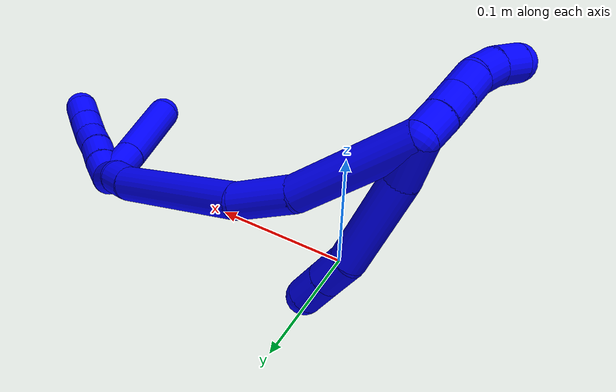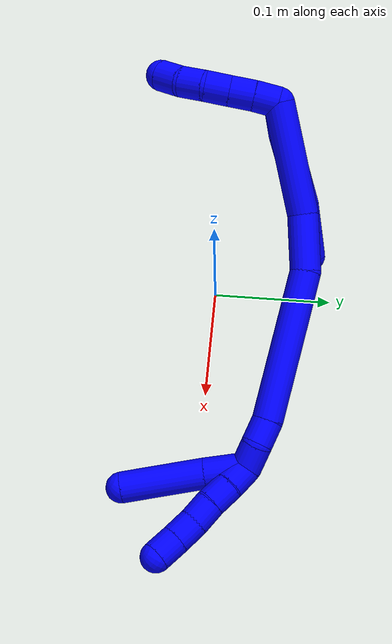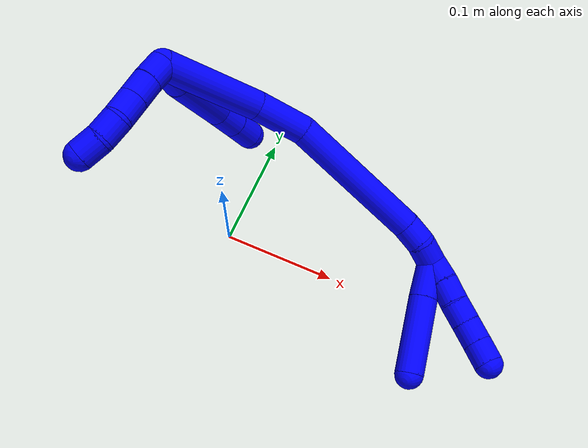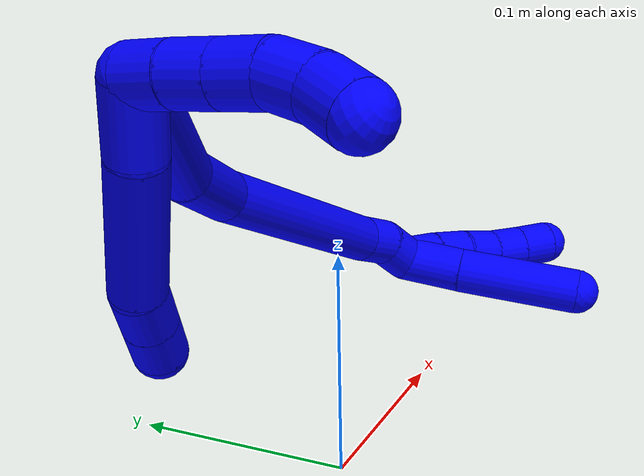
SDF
<sdf version="1.7">
 <world name="default">
  <model name="1">
   <static>0</static>
   <link name="1">
    <collision name="collision-cylinder-e_1_2_8">
     <pose>-0.011286 -0.001696 0.011521 0.146124 -0.769756 -0.05928</pose>
     <geometry><cylinder><radius>0.0125</radius><length>0.032433</length></cylinder></geometry>
     <surface>
      <friction><ode><mu>1.16</mu><mu2>1.16</mu2><slip1>0</slip1><slip2>0</slip2></ode></friction>
      <contact><ode><kp>1e+06</kp><kd>1</kd><max_vel>0</max_vel><min_depth>0.001</min_depth></ode></contact>
     </surface>
    </collision>
    <visual name="visual-cylinder-e_1_2_8">
     <pose>-0.011286 -0.001696 0.011521 0.146124 -0.769756 -0.05928</pose>
     <geometry><cylinder><radius>0.0125</radius><length>0.032433</length></cylinder></geometry>
     <material><ambient>0 0 1 1</ambient></material>
    </visual>
    <collision name="collision-cylinder-e_2_8_9">
     <pose>-0.04402 -0.002714 0.050615 -0.024564 -0.660946 0.008427</pose>
     <geometry><cylinder><radius>0.0125</radius><length>0.069878</length></cylinder></geometry>
     <surface>
      <friction><ode><mu>1.16</mu><mu2>1.16</mu2><slip1>0</slip1><slip2>0</slip2></ode></friction>
      <contact><ode><kp>1e+06</kp><kd>1</kd><max_vel>0</max_vel><min_depth>0.001</min_depth></ode></contact>
     </surface>
    </collision>
    <visual name="visual-cylinder-e_2_8_9">
     <pose>-0.04402 -0.002714 0.050615 -0.024564 -0.660946 0.008427</pose>
     <geometry><cylinder><radius>0.0125</radius><length>0.069878</length></cylinder></geometry>
     <material><ambient>0 0 1 1</ambient></material>
    </visual>
    <collision name="collision-cylinder-e_3_9_10">
     <pose>-0.073548 0.000962 0.08669 -0.33897 -0.730722 0.130737</pose>
     <geometry><cylinder><radius>0.0125</radius><length>0.024213</length></cylinder></geometry>
     <surface>
      <friction><ode><mu>1.16</mu><mu2>1.16</mu2><slip1>0</slip1><slip2>0</slip2></ode></friction>
      <contact><ode><kp>1e+06</kp><kd>1</kd><max_vel>0</max_vel><min_depth>0.001</min_depth></ode></contact>
     </surface>
    </collision>
    <visual name="visual-cylinder-e_3_9_10">
     <pose>-0.073548 0.000962 0.08669 -0.33897 -0.730722 0.130737</pose>
     <geometry><cylinder><radius>0.0125</radius><length>0.024213</length></cylinder></geometry>
     <material><ambient>0 0 1 1</ambient></material>
    </visual>
    <collision name="collision-cylinder-e_4_10_6">
     <pose>-0.08953 0.006777 0.103402 -0.330615 -0.738523 0.128952</pose>
     <geometry><cylinder><radius>0.0125</radius><length>0.023476</length></cylinder></geometry>
     <surface>
      <friction><ode><mu>1.16</mu><mu2>1.16</mu2><slip1>0</slip1><slip2>0</slip2></ode></friction>
      <contact><ode><kp>1e+06</kp><kd>1</kd><max_vel>0</max_vel><min_depth>0.001</min_depth></ode></contact>
     </surface>
    </collision>
    <visual name="visual-cylinder-e_4_10_6">
     <pose>-0.08953 0.006777 0.103402 -0.330615 -0.738523 0.128952</pose>
     <geometry><cylinder><radius>0.0125</radius><length>0.023476</length></cylinder></geometry>
     <material><ambient>0 0 1 1</ambient></material>
    </visual>
    <collision name="collision-cylinder-e_1_2_11">
     <pose>-0.004343 -0.001333 -0.008908 2.99311 -0.449313 -2.51226</pose>
     <geometry><cylinder><radius>0.0125</radius><length>0.02</length></cylinder></geometry>
     <surface>
      <friction><ode><mu>1.16</mu><mu2>1.16</mu2><slip1>0</slip1><slip2>0</slip2></ode></friction>
      <contact><ode><kp>1e+06</kp><kd>1</kd><max_vel>0</max_vel><min_depth>0.001</min_depth></ode></contact>
     </surface>
    </collision>
    <visual name="visual-cylinder-e_1_2_11">
     <pose>-0.004343 -0.001333 -0.008908 2.99311 -0.449313 -2.51226</pose>
     <geometry><cylinder><radius>0.0125</radius><length>0.02</length></cylinder></geometry>
     <material><ambient>0 0 1 1</ambient></material>
    </visual>
    <collision name="collision-cylinder-e_2_11_12">
     <pose>-0.013509 -0.003585 -0.026529 3.03643 -0.50318 -2.73768</pose>
     <geometry><cylinder><radius>0.0125</radius><length>0.02</length></cylinder></geometry>
     <surface>
      <friction><ode><mu>1.16</mu><mu2>1.16</mu2><slip1>0</slip1><slip2>0</slip2></ode></friction>
      <contact><ode><kp>1e+06</kp><kd>1</kd><max_vel>0</max_vel><min_depth>0.001</min_depth></ode></contact>
     </surface>
    </collision>
    <visual name="visual-cylinder-e_2_11_12">
     <pose>-0.013509 -0.003585 -0.026529 3.03643 -0.50318 -2.73768</pose>
     <geometry><cylinder><radius>0.0125</radius><length>0.02</length></cylinder></geometry>
     <material><ambient>0 0 1 1</ambient></material>
    </visual>
    <collision name="collision-cylinder-e_3_12_13">
     <pose>-0.023057 -0.005393 -0.044009 3.04055 -0.492197 -2.74432</pose>
     <geometry><cylinder><radius>0.0125</radius><length>0.02</length></cylinder></geometry>
     <surface>
      <friction><ode><mu>1.16</mu><mu2>1.16</mu2><slip1>0</slip1><slip2>0</slip2></ode></friction>
      <contact><ode><kp>1e+06</kp><kd>1</kd><max_vel>0</max_vel><min_depth>0.001</min_depth></ode></contact>
     </surface>
    </collision>
    <visual name="visual-cylinder-e_3_12_13">
     <pose>-0.023057 -0.005393 -0.044009 3.04055 -0.492197 -2.74432</pose>
     <geometry><cylinder><radius>0.0125</radius><length>0.02</length></cylinder></geometry>
     <material><ambient>0 0 1 1</ambient></material>
    </visual>
    <collision name="collision-cylinder-e_4_13_14">
     <pose>-0.033681 -0.009386 -0.060232 2.74701 -0.630823 -2.04235</pose>
     <geometry><cylinder><radius>0.0125</radius><length>0.02</length></cylinder></geometry>
     <surface>
      <friction><ode><mu>1.16</mu><mu2>1.16</mu2><slip1>0</slip1><slip2>0</slip2></ode></friction>
      <contact><ode><kp>1e+06</kp><kd>1</kd><max_vel>0</max_vel><min_depth>0.001</min_depth></ode></contact>
     </surface>
    </collision>
    <visual name="visual-cylinder-e_4_13_14">
     <pose>-0.033681 -0.009386 -0.060232 2.74701 -0.630823 -2.04235</pose>
     <geometry><cylinder><radius>0.0125</radius><length>0.02</length></cylinder></geometry>
     <material><ambient>0 0 1 1</ambient></material>
    </visual>
    <collision name="collision-cylinder-e_5_14_5">
     <pose>-0.045174 -0.017902 -0.073965 2.43027 -0.593784 -1.37794</pose>
     <geometry><cylinder><radius>0.0125</radius><length>0.02</length></cylinder></geometry>
     <surface>
      <friction><ode><mu>1.16</mu><mu2>1.16</mu2><slip1>0</slip1><slip2>0</slip2></ode></friction>
      <contact><ode><kp>1e+06</kp><kd>1</kd><max_vel>0</max_vel><min_depth>0.001</min_depth></ode></contact>
     </surface>
    </collision>
    <visual name="visual-cylinder-e_5_14_5">
     <pose>-0.045174 -0.017902 -0.073965 2.43027 -0.593784 -1.37794</pose>
     <geometry><cylinder><radius>0.0125</radius><length>0.02</length></cylinder></geometry>
     <material><ambient>0 0 1 1</ambient></material>
    </visual>
    <collision name="collision-cylinder-e_1_2_15">
     <pose>-0.02317 0.023311 0.031085 -0.643439 -0.537709 0.183151</pose>
     <geometry><cylinder><radius>0.0125</radius><length>0.090476</length></cylinder></geometry>
     <surface>
      <friction><ode><mu>1.16</mu><mu2>1.16</mu2><slip1>0</slip1><slip2>0</slip2></ode></friction>
      <contact><ode><kp>1e+06</kp><kd>1</kd><max_vel>0</max_vel><min_depth>0.001</min_depth></ode></contact>
     </surface>
    </collision>
    <visual name="visual-cylinder-e_1_2_15">
     <pose>-0.02317 0.023311 0.031085 -0.643439 -0.537709 0.183151</pose>
     <geometry><cylinder><radius>0.0125</radius><length>0.090476</length></cylinder></geometry>
     <material><ambient>0 0 1 1</ambient></material>
    </visual>
    <collision name="collision-cylinder-e_2_15_16">
     <pose>-0.058483 0.062365 0.073434 -0.949756 -0.56028 0.2937</pose>
     <geometry><cylinder><radius>0.0125</radius><length>0.045704</length></cylinder></geometry>
     <surface>
      <friction><ode><mu>1.16</mu><mu2>1.16</mu2><slip1>0</slip1><slip2>0</slip2></ode></friction>
      <contact><ode><kp>1e+06</kp><kd>1</kd><max_vel>0</max_vel><min_depth>0.001</min_depth></ode></contact>
     </surface>
    </collision>
    <visual name="visual-cylinder-e_2_15_16">
     <pose>-0.058483 0.062365 0.073434 -0.949756 -0.56028 0.2937</pose>
     <geometry><cylinder><radius>0.0125</radius><length>0.045704</length></cylinder></geometry>
     <material><ambient>0 0 1 1</ambient></material>
    </visual>
    <collision name="collision-cylinder-e_3_16_17">
     <pose>-0.111989 0.120451 0.099304 -1.23864 -0.745608 0.543796</pose>
     <geometry><cylinder><radius>0.0125</radius><length>0.121935</length></cylinder></geometry>
     <surface>
      <friction><ode><mu>1.16</mu><mu2>1.16</mu2><slip1>0</slip1><slip2>0</slip2></ode></friction>
      <contact><ode><kp>1e+06</kp><kd>1</kd><max_vel>0</max_vel><min_depth>0.001</min_depth></ode></contact>
     </surface>
    </collision>
    <visual name="visual-cylinder-e_3_16_17">
     <pose>-0.111989 0.120451 0.099304 -1.23864 -0.745608 0.543796</pose>
     <geometry><cylinder><radius>0.0125</radius><length>0.121935</length></cylinder></geometry>
     <material><ambient>0 0 1 1</ambient></material>
    </visual>
    <collision name="collision-cylinder-e_4_17_18">
     <pose>-0.160521 0.169857 0.114437 -1.49625 -0.791593 0.739894</pose>
     <geometry><cylinder><radius>0.0125</radius><length>0.020158</length></cylinder></geometry>
     <surface>
      <friction><ode><mu>1.16</mu><mu2>1.16</mu2><slip1>0</slip1><slip2>0</slip2></ode></friction>
      <contact><ode><kp>1e+06</kp><kd>1</kd><max_vel>0</max_vel><min_depth>0.001</min_depth></ode></contact>
     </surface>
    </collision>
    <visual name="visual-cylinder-e_4_17_18">
     <pose>-0.160521 0.169857 0.114437 -1.49625 -0.791593 0.739894</pose>
     <geometry><cylinder><radius>0.0125</radius><length>0.020158</length></cylinder></geometry>
     <material><ambient>0 0 1 1</ambient></material>
    </visual>
    <collision name="collision-cylinder-e_5_18_1">
     <pose>-0.177236 0.181692 0.117002 -1.16726 -1.07285 0.748289</pose>
     <geometry><cylinder><radius>0.0125</radius><length>0.021726</length></cylinder></geometry>
     <surface>
      <friction><ode><mu>1.16</mu><mu2>1.16</mu2><slip1>0</slip1><slip2>0</slip2></ode></friction>
      <contact><ode><kp>1e+06</kp><kd>1</kd><max_vel>0</max_vel><min_depth>0.001</min_depth></ode></contact>
     </surface>
    </collision>
    <visual name="visual-cylinder-e_5_18_1">
     <pose>-0.177236 0.181692 0.117002 -1.16726 -1.07285 0.748289</pose>
     <geometry><cylinder><radius>0.0125</radius><length>0.021726</length></cylinder></geometry>
     <material><ambient>0 0 1 1</ambient></material>
    </visual>
    <collision name="collision-cylinder-e_1_1_19">
     <pose>-0.192736 0.193742 0.115639 -2.00788 -0.63791 0.957125</pose>
     <geometry><cylinder><radius>0.0125</radius><length>0.02</length></cylinder></geometry>
     <surface>
      <friction><ode><mu>1.16</mu><mu2>1.16</mu2><slip1>0</slip1><slip2>0</slip2></ode></friction>
      <contact><ode><kp>1e+06</kp><kd>1</kd><max_vel>0</max_vel><min_depth>0.001</min_depth></ode></contact>
     </surface>
    </collision>
    <visual name="visual-cylinder-e_1_1_19">
     <pose>-0.192736 0.193742 0.115639 -2.00788 -0.63791 0.957125</pose>
     <geometry><cylinder><radius>0.0125</radius><length>0.02</length></cylinder></geometry>
     <material><ambient>0 0 1 1</ambient></material>
    </visual>
    <collision name="collision-cylinder-e_2_19_20">
     <pose>-0.205264 0.207603 0.108568 -2.07946 -0.717191 1.13596</pose>
     <geometry><cylinder><radius>0.0125</radius><length>0.02</length></cylinder></geometry>
     <surface>
      <friction><ode><mu>1.16</mu><mu2>1.16</mu2><slip1>0</slip1><slip2>0</slip2></ode></friction>
      <contact><ode><kp>1e+06</kp><kd>1</kd><max_vel>0</max_vel><min_depth>0.001</min_depth></ode></contact>
     </surface>
    </collision>
    <visual name="visual-cylinder-e_2_19_20">
     <pose>-0.205264 0.207603 0.108568 -2.07946 -0.717191 1.13596</pose>
     <geometry><cylinder><radius>0.0125</radius><length>0.02</length></cylinder></geometry>
     <material><ambient>0 0 1 1</ambient></material>
    </visual>
    <collision name="collision-cylinder-e_3_20_21">
     <pose>-0.218823 0.220869 0.102345 -1.93565 -0.77351 1.06833</pose>
     <geometry><cylinder><radius>0.0125</radius><length>0.02</length></cylinder></geometry>
     <surface>
      <friction><ode><mu>1.16</mu><mu2>1.16</mu2><slip1>0</slip1><slip2>0</slip2></ode></friction>
      <contact><ode><kp>1e+06</kp><kd>1</kd><max_vel>0</max_vel><min_depth>0.001</min_depth></ode></contact>
     </surface>
    </collision>
    <visual name="visual-cylinder-e_3_20_21">
     <pose>-0.218823 0.220869 0.102345 -1.93565 -0.77351 1.06833</pose>
     <geometry><cylinder><radius>0.0125</radius><length>0.02</length></cylinder></geometry>
     <material><ambient>0 0 1 1</ambient></material>
    </visual>
    <collision name="collision-cylinder-e_4_21_22">
     <pose>-0.231905 0.234493 0.095962 -2.07501 -0.655551 1.04517</pose>
     <geometry><cylinder><radius>0.0125</radius><length>0.02</length></cylinder></geometry>
     <surface>
      <friction><ode><mu>1.16</mu><mu2>1.16</mu2><slip1>0</slip1><slip2>0</slip2></ode></friction>
      <contact><ode><kp>1e+06</kp><kd>1</kd><max_vel>0</max_vel><min_depth>0.001</min_depth></ode></contact>
     </surface>
    </collision>
    <visual name="visual-cylinder-e_4_21_22">
     <pose>-0.231905 0.234493 0.095962 -2.07501 -0.655551 1.04517</pose>
     <geometry><cylinder><radius>0.0125</radius><length>0.02</length></cylinder></geometry>
     <material><ambient>0 0 1 1</ambient></material>
    </visual>
    <collision name="collision-cylinder-e_5_22_4">
     <pose>-0.24386 0.248375 0.08795 -2.11304 -0.626 1.0404</pose>
     <geometry><cylinder><radius>0.0125</radius><length>0.02</length></cylinder></geometry>
     <surface>
      <friction><ode><mu>1.16</mu><mu2>1.16</mu2><slip1>0</slip1><slip2>0</slip2></ode></friction>
      <contact><ode><kp>1e+06</kp><kd>1</kd><max_vel>0</max_vel><min_depth>0.001</min_depth></ode></contact>
     </surface>
    </collision>
    <visual name="visual-cylinder-e_5_22_4">
     <pose>-0.24386 0.248375 0.08795 -2.11304 -0.626 1.0404</pose>
     <geometry><cylinder><radius>0.0125</radius><length>0.02</length></cylinder></geometry>
     <material><ambient>0 0 1 1</ambient></material>
    </visual>
    <collision name="collision-cylinder-e_1_1_23">
     <pose>-0.198606 0.187703 0.107738 -3.03239 -0.805049 2.88624</pose>
     <geometry><cylinder><radius>0.0125</radius><length>0.032808</length></cylinder></geometry>
     <surface>
      <friction><ode><mu>1.16</mu><mu2>1.16</mu2><slip1>0</slip1><slip2>0</slip2></ode></friction>
      <contact><ode><kp>1e+06</kp><kd>1</kd><max_vel>0</max_vel><min_depth>0.001</min_depth></ode></contact>
     </surface>
    </collision>
    <visual name="visual-cylinder-e_1_1_23">
     <pose>-0.198606 0.187703 0.107738 -3.03239 -0.805049 2.88624</pose>
     <geometry><cylinder><radius>0.0125</radius><length>0.032808</length></cylinder></geometry>
     <material><ambient>0 0 1 1</ambient></material>
    </visual>
    <collision name="collision-cylinder-e_2_23_3">
     <pose>-0.234494 0.193089 0.073361 -2.96377 -0.798412 2.72507</pose>
     <geometry><cylinder><radius>0.0125</radius><length>0.067192</length></cylinder></geometry>
     <surface>
      <friction><ode><mu>1.16</mu><mu2>1.16</mu2><slip1>0</slip1><slip2>0</slip2></ode></friction>
      <contact><ode><kp>1e+06</kp><kd>1</kd><max_vel>0</max_vel><min_depth>0.001</min_depth></ode></contact>
     </surface>
    </collision>
    <visual name="visual-cylinder-e_2_23_3">
     <pose>-0.234494 0.193089 0.073361 -2.96377 -0.798412 2.72507</pose>
     <geometry><cylinder><radius>0.0125</radius><length>0.067192</length></cylinder></geometry>
     <material><ambient>0 0 1 1</ambient></material>
    </visual>
    <collision name="collision-sphere-3">
     <pose>-0.258557 0.197237 0.050286 0 -0 0</pose>
     <geometry><sphere><radius>0.0125</radius></sphere></geometry>
     <surface>
      <friction><ode><mu>1.16</mu><mu2>1.16</mu2><slip1>0</slip1><slip2>0</slip2></ode></friction>
      <contact><ode><kp>1e+06</kp><kd>1</kd><max_vel>0</max_vel><min_depth>0.001</min_depth></ode></contact>
     </surface>
    </collision>
    <visual name="visual-sphere-3">
     <pose>-0.258557 0.197237 0.050286 0 -0 0</pose>
     <geometry><sphere><radius>0.0125</radius></sphere></geometry>
     <material><ambient>0 0 1 1</ambient></material>
    </visual>
    <collision name="collision-sphere-23">
     <pose>-0.210431 0.188942 0.096437 0 -0 0</pose>
     <geometry><sphere><radius>0.0125</radius></sphere></geometry>
     <surface>
      <friction><ode><mu>1.16</mu><mu2>1.16</mu2><slip1>0</slip1><slip2>0</slip2></ode></friction>
      <contact><ode><kp>1e+06</kp><kd>1</kd><max_vel>0</max_vel><min_depth>0.001</min_depth></ode></contact>
     </surface>
    </collision>
    <visual name="visual-sphere-23">
     <pose>-0.210431 0.188942 0.096437 0 -0 0</pose>
     <geometry><sphere><radius>0.0125</radius></sphere></geometry>
     <material><ambient>0 0 1 1</ambient></material>
    </visual>
    <collision name="collision-sphere-4">
     <pose>-0.249719 0.255316 0.083768 0 -0 0</pose>
     <geometry><sphere><radius>0.0125</radius></sphere></geometry>
     <surface>
      <friction><ode><mu>1.16</mu><mu2>1.16</mu2><slip1>0</slip1><slip2>0</slip2></ode></friction>
      <contact><ode><kp>1e+06</kp><kd>1</kd><max_vel>0</max_vel><min_depth>0.001</min_depth></ode></contact>
     </surface>
    </collision>
    <visual name="visual-sphere-4">
     <pose>-0.249719 0.255316 0.083768 0 -0 0</pose>
     <geometry><sphere><radius>0.0125</radius></sphere></geometry>
     <material><ambient>0 0 1 1</ambient></material>
    </visual>
    <collision name="collision-sphere-22">
     <pose>-0.238001 0.241434 0.092132 0 -0 0</pose>
     <geometry><sphere><radius>0.0125</radius></sphere></geometry>
     <surface>
      <friction><ode><mu>1.16</mu><mu2>1.16</mu2><slip1>0</slip1><slip2>0</slip2></ode></friction>
      <contact><ode><kp>1e+06</kp><kd>1</kd><max_vel>0</max_vel><min_depth>0.001</min_depth></ode></contact>
     </surface>
    </collision>
    <visual name="visual-sphere-22">
     <pose>-0.238001 0.241434 0.092132 0 -0 0</pose>
     <geometry><sphere><radius>0.0125</radius></sphere></geometry>
     <material><ambient>0 0 1 1</ambient></material>
    </visual>
    <collision name="collision-sphere-21">
     <pose>-0.225809 0.227553 0.099792 0 -0 0</pose>
     <geometry><sphere><radius>0.0125</radius></sphere></geometry>
     <surface>
      <friction><ode><mu>1.16</mu><mu2>1.16</mu2><slip1>0</slip1><slip2>0</slip2></ode></friction>
      <contact><ode><kp>1e+06</kp><kd>1</kd><max_vel>0</max_vel><min_depth>0.001</min_depth></ode></contact>
     </surface>
    </collision>
    <visual name="visual-sphere-21">
     <pose>-0.225809 0.227553 0.099792 0 -0 0</pose>
     <geometry><sphere><radius>0.0125</radius></sphere></geometry>
     <material><ambient>0 0 1 1</ambient></material>
    </visual>
    <collision name="collision-sphere-20">
     <pose>-0.211836 0.214185 0.104898 0 -0 0</pose>
     <geometry><sphere><radius>0.0125</radius></sphere></geometry>
     <surface>
      <friction><ode><mu>1.16</mu><mu2>1.16</mu2><slip1>0</slip1><slip2>0</slip2></ode></friction>
      <contact><ode><kp>1e+06</kp><kd>1</kd><max_vel>0</max_vel><min_depth>0.001</min_depth></ode></contact>
     </surface>
    </collision>
    <visual name="visual-sphere-20">
     <pose>-0.211836 0.214185 0.104898 0 -0 0</pose>
     <geometry><sphere><radius>0.0125</radius></sphere></geometry>
     <material><ambient>0 0 1 1</ambient></material>
    </visual>
    <collision name="collision-sphere-11">
     <pose>-0.008687 -0.002665 -0.017817 0 -0 0</pose>
     <geometry><sphere><radius>0.0125</radius></sphere></geometry>
     <surface>
      <friction><ode><mu>1.16</mu><mu2>1.16</mu2><slip1>0</slip1><slip2>0</slip2></ode></friction>
      <contact><ode><kp>1e+06</kp><kd>1</kd><max_vel>0</max_vel><min_depth>0.001</min_depth></ode></contact>
     </surface>
    </collision>
    <visual name="visual-sphere-11">
     <pose>-0.008687 -0.002665 -0.017817 0 -0 0</pose>
     <geometry><sphere><radius>0.0125</radius></sphere></geometry>
     <material><ambient>0 0 1 1</ambient></material>
    </visual>
    <collision name="collision-sphere-6">
     <pose>-0.097432 0.009595 0.111612 0 -0 0</pose>
     <geometry><sphere><radius>0.0125</radius></sphere></geometry>
     <surface>
      <friction><ode><mu>1.16</mu><mu2>1.16</mu2><slip1>0</slip1><slip2>0</slip2></ode></friction>
      <contact><ode><kp>1e+06</kp><kd>1</kd><max_vel>0</max_vel><min_depth>0.001</min_depth></ode></contact>
     </surface>
    </collision>
    <visual name="visual-sphere-6">
     <pose>-0.097432 0.009595 0.111612 0 -0 0</pose>
     <geometry><sphere><radius>0.0125</radius></sphere></geometry>
     <material><ambient>0 0 1 1</ambient></material>
    </visual>
    <collision name="collision-sphere-10">
     <pose>-0.081628 0.003959 0.095193 0 -0 0</pose>
     <geometry><sphere><radius>0.0125</radius></sphere></geometry>
     <surface>
      <friction><ode><mu>1.16</mu><mu2>1.16</mu2><slip1>0</slip1><slip2>0</slip2></ode></friction>
      <contact><ode><kp>1e+06</kp><kd>1</kd><max_vel>0</max_vel><min_depth>0.001</min_depth></ode></contact>
     </surface>
    </collision>
    <visual name="visual-sphere-10">
     <pose>-0.081628 0.003959 0.095193 0 -0 0</pose>
     <geometry><sphere><radius>0.0125</radius></sphere></geometry>
     <material><ambient>0 0 1 1</ambient></material>
    </visual>
    <collision name="collision-sphere-9">
     <pose>-0.065468 -0.002036 0.078188 0 -0 0</pose>
     <geometry><sphere><radius>0.0125</radius></sphere></geometry>
     <surface>
      <friction><ode><mu>1.16</mu><mu2>1.16</mu2><slip1>0</slip1><slip2>0</slip2></ode></friction>
      <contact><ode><kp>1e+06</kp><kd>1</kd><max_vel>0</max_vel><min_depth>0.001</min_depth></ode></contact>
     </surface>
    </collision>
    <visual name="visual-sphere-9">
     <pose>-0.065468 -0.002036 0.078188 0 -0 0</pose>
     <geometry><sphere><radius>0.0125</radius></sphere></geometry>
     <material><ambient>0 0 1 1</ambient></material>
    </visual>
    <collision name="collision-sphere-2">
     <geometry><sphere><radius>0.0125</radius></sphere></geometry>
     <surface>
      <friction><ode><mu>1.16</mu><mu2>1.16</mu2><slip1>0</slip1><slip2>0</slip2></ode></friction>
      <contact><ode><kp>1e+06</kp><kd>1</kd><max_vel>0</max_vel><min_depth>0.001</min_depth></ode></contact>
     </surface>
    </collision>
    <visual name="visual-sphere-2">
     <geometry><sphere><radius>0.0125</radius></sphere></geometry>
     <material><ambient>0 0 1 1</ambient></material>
    </visual>
    <collision name="collision-sphere-19">
     <pose>-0.198691 0.20102 0.112238 0 -0 0</pose>
     <geometry><sphere><radius>0.0125</radius></sphere></geometry>
     <surface>
      <friction><ode><mu>1.16</mu><mu2>1.16</mu2><slip1>0</slip1><slip2>0</slip2></ode></friction>
      <contact><ode><kp>1e+06</kp><kd>1</kd><max_vel>0</max_vel><min_depth>0.001</min_depth></ode></contact>
     </surface>
    </collision>
    <visual name="visual-sphere-19">
     <pose>-0.198691 0.20102 0.112238 0 -0 0</pose>
     <geometry><sphere><radius>0.0125</radius></sphere></geometry>
     <material><ambient>0 0 1 1</ambient></material>
    </visual>
    <collision name="collision-sphere-8">
     <pose>-0.022572 -0.003391 0.023042 0 -0 0</pose>
     <geometry><sphere><radius>0.0125</radius></sphere></geometry>
     <surface>
      <friction><ode><mu>1.16</mu><mu2>1.16</mu2><slip1>0</slip1><slip2>0</slip2></ode></friction>
      <contact><ode><kp>1e+06</kp><kd>1</kd><max_vel>0</max_vel><min_depth>0.001</min_depth></ode></contact>
     </surface>
    </collision>
    <visual name="visual-sphere-8">
     <pose>-0.022572 -0.003391 0.023042 0 -0 0</pose>
     <geometry><sphere><radius>0.0125</radius></sphere></geometry>
     <material><ambient>0 0 1 1</ambient></material>
    </visual>
    <collision name="collision-sphere-12">
     <pose>-0.018331 -0.004504 -0.035241 0 -0 0</pose>
     <geometry><sphere><radius>0.0125</radius></sphere></geometry>
     <surface>
      <friction><ode><mu>1.16</mu><mu2>1.16</mu2><slip1>0</slip1><slip2>0</slip2></ode></friction>
      <contact><ode><kp>1e+06</kp><kd>1</kd><max_vel>0</max_vel><min_depth>0.001</min_depth></ode></contact>
     </surface>
    </collision>
    <visual name="visual-sphere-12">
     <pose>-0.018331 -0.004504 -0.035241 0 -0 0</pose>
     <geometry><sphere><radius>0.0125</radius></sphere></geometry>
     <material><ambient>0 0 1 1</ambient></material>
    </visual>
    <collision name="collision-sphere-13">
     <pose>-0.027782 -0.006282 -0.052777 0 -0 0</pose>
     <geometry><sphere><radius>0.0125</radius></sphere></geometry>
     <surface>
      <friction><ode><mu>1.16</mu><mu2>1.16</mu2><slip1>0</slip1><slip2>0</slip2></ode></friction>
      <contact><ode><kp>1e+06</kp><kd>1</kd><max_vel>0</max_vel><min_depth>0.001</min_depth></ode></contact>
     </surface>
    </collision>
    <visual name="visual-sphere-13">
     <pose>-0.027782 -0.006282 -0.052777 0 -0 0</pose>
     <geometry><sphere><radius>0.0125</radius></sphere></geometry>
     <material><ambient>0 0 1 1</ambient></material>
    </visual>
    <collision name="collision-sphere-14">
     <pose>-0.039579 -0.012491 -0.067687 0 -0 0</pose>
     <geometry><sphere><radius>0.0125</radius></sphere></geometry>
     <surface>
      <friction><ode><mu>1.16</mu><mu2>1.16</mu2><slip1>0</slip1><slip2>0</slip2></ode></friction>
      <contact><ode><kp>1e+06</kp><kd>1</kd><max_vel>0</max_vel><min_depth>0.001</min_depth></ode></contact>
     </surface>
    </collision>
    <visual name="visual-sphere-14">
     <pose>-0.039579 -0.012491 -0.067687 0 -0 0</pose>
     <geometry><sphere><radius>0.0125</radius></sphere></geometry>
     <material><ambient>0 0 1 1</ambient></material>
    </visual>
    <collision name="collision-sphere-5">
     <pose>-0.050769 -0.023313 -0.080244 0 -0 0</pose>
     <geometry><sphere><radius>0.0125</radius></sphere></geometry>
     <surface>
      <friction><ode><mu>1.16</mu><mu2>1.16</mu2><slip1>0</slip1><slip2>0</slip2></ode></friction>
      <contact><ode><kp>1e+06</kp><kd>1</kd><max_vel>0</max_vel><min_depth>0.001</min_depth></ode></contact>
     </surface>
    </collision>
    <visual name="visual-sphere-5">
     <pose>-0.050769 -0.023313 -0.080244 0 -0 0</pose>
     <geometry><sphere><radius>0.0125</radius></sphere></geometry>
     <material><ambient>0 0 1 1</ambient></material>
    </visual>
    <collision name="collision-sphere-15">
     <pose>-0.046339 0.046621 0.06217 0 -0 0</pose>
     <geometry><sphere><radius>0.0125</radius></sphere></geometry>
     <surface>
      <friction><ode><mu>1.16</mu><mu2>1.16</mu2><slip1>0</slip1><slip2>0</slip2></ode></friction>
      <contact><ode><kp>1e+06</kp><kd>1</kd><max_vel>0</max_vel><min_depth>0.001</min_depth></ode></contact>
     </surface>
    </collision>
    <visual name="visual-sphere-15">
     <pose>-0.046339 0.046621 0.06217 0 -0 0</pose>
     <geometry><sphere><radius>0.0125</radius></sphere></geometry>
     <material><ambient>0 0 1 1</ambient></material>
    </visual>
    <collision name="collision-sphere-16">
     <pose>-0.070627 0.078108 0.084698 0 -0 0</pose>
     <geometry><sphere><radius>0.0125</radius></sphere></geometry>
     <surface>
      <friction><ode><mu>1.16</mu><mu2>1.16</mu2><slip1>0</slip1><slip2>0</slip2></ode></friction>
      <contact><ode><kp>1e+06</kp><kd>1</kd><max_vel>0</max_vel><min_depth>0.001</min_depth></ode></contact>
     </surface>
    </collision>
    <visual name="visual-sphere-16">
     <pose>-0.070627 0.078108 0.084698 0 -0 0</pose>
     <geometry><sphere><radius>0.0125</radius></sphere></geometry>
     <material><ambient>0 0 1 1</ambient></material>
    </visual>
    <collision name="collision-sphere-17">
     <pose>-0.15335 0.162794 0.113909 0 -0 0</pose>
     <geometry><sphere><radius>0.0125</radius></sphere></geometry>
     <surface>
      <friction><ode><mu>1.16</mu><mu2>1.16</mu2><slip1>0</slip1><slip2>0</slip2></ode></friction>
      <contact><ode><kp>1e+06</kp><kd>1</kd><max_vel>0</max_vel><min_depth>0.001</min_depth></ode></contact>
     </surface>
    </collision>
    <visual name="visual-sphere-17">
     <pose>-0.15335 0.162794 0.113909 0 -0 0</pose>
     <geometry><sphere><radius>0.0125</radius></sphere></geometry>
     <material><ambient>0 0 1 1</ambient></material>
    </visual>
    <collision name="collision-sphere-18">
     <pose>-0.167692 0.17692 0.114965 0 -0 0</pose>
     <geometry><sphere><radius>0.0125</radius></sphere></geometry>
     <surface>
      <friction><ode><mu>1.16</mu><mu2>1.16</mu2><slip1>0</slip1><slip2>0</slip2></ode></friction>
      <contact><ode><kp>1e+06</kp><kd>1</kd><max_vel>0</max_vel><min_depth>0.001</min_depth></ode></contact>
     </surface>
    </collision>
    <visual name="visual-sphere-18">
     <pose>-0.167692 0.17692 0.114965 0 -0 0</pose>
     <geometry><sphere><radius>0.0125</radius></sphere></geometry>
     <material><ambient>0 0 1 1</ambient></material>
    </visual>
    <collision name="collision-sphere-1">
     <pose>-0.18678 0.186464 0.119039 0 -0 0</pose>
     <geometry><sphere><radius>0.0125</radius></sphere></geometry>
     <surface>
      <friction><ode><mu>1.16</mu><mu2>1.16</mu2><slip1>0</slip1><slip2>0</slip2></ode></friction>
      <contact><ode><kp>1e+06</kp><kd>1</kd><max_vel>0</max_vel><min_depth>0.001</min_depth></ode></contact>
     </surface>
    </collision>
    <visual name="visual-sphere-1">
     <pose>-0.18678 0.186464 0.119039 0 -0 0</pose>
     <geometry><sphere><radius>0.0125</radius></sphere></geometry>
     <material><ambient>0 0 1 1</ambient></material>
    </visual>
    <inertial>
     <pose>-0.105806 0.089917 0.061285 0 -0 0</pose>
     <mass>0.75</mass>
     <inertia>
      <ixx>0.000218</ixx>
      <ixy>0</ixy>
      <ixz>0</ixz>
      <iyy>0.000339</iyy>
      <iyz>0</iyz>
      <izz>4.8e-05</izz>
     </inertia>
    </inertial>
   </link>
   <pose>-0.067095 0.046605 0.183625 2.64466 -0.870807 1.99885</pose>
  </model>
 </world>
</sdf>
